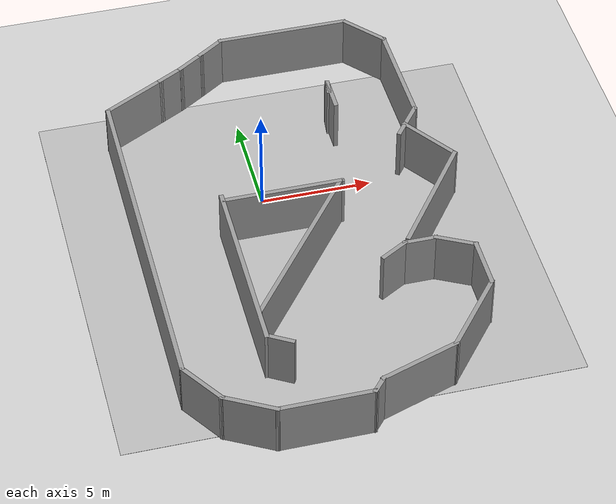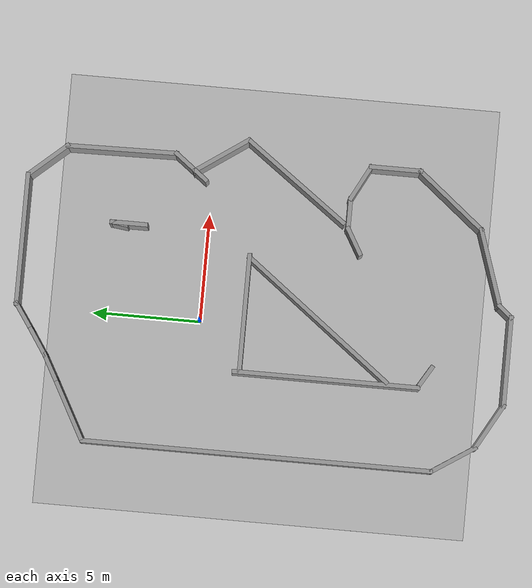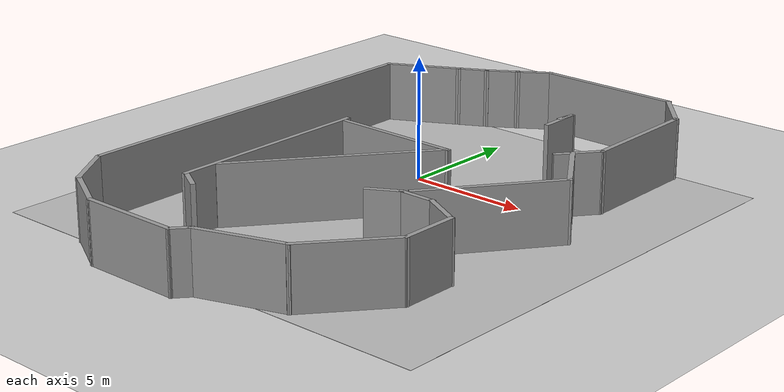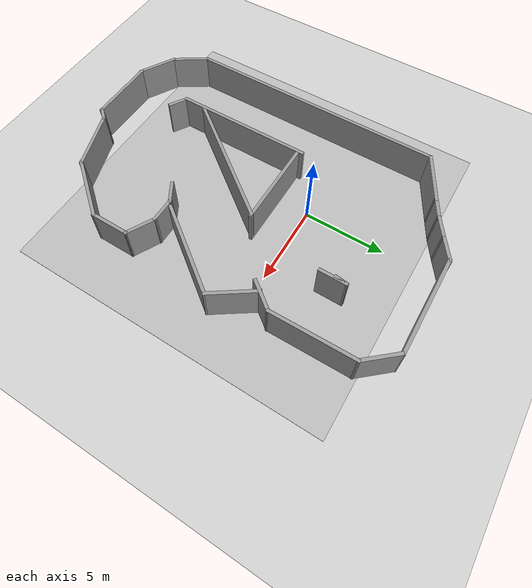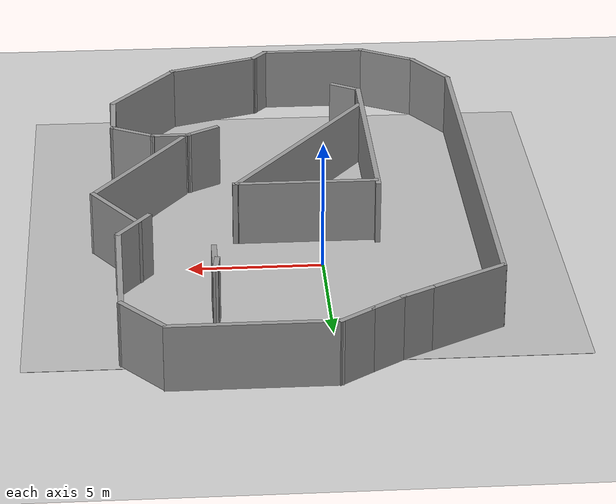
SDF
<sdf version="1.4">
 <world name="default">
  <model name="ground_plane">
   <static>1</static>
   <link name="link">
    <collision name="collision">
     <geometry>
      <plane><normal>0.000000 0.000000 1.000000</normal><size>100.000000 100.000000</size></plane>
     </geometry>
     <surface><friction><ode><mu>100.000000</mu><mu2>50.000000</mu2></ode></friction></surface>
    </collision>
    <visual name="visual">
     <cast_shadows>0</cast_shadows>
     <geometry>
      <plane><normal>0.000000 0.000000 1.000000</normal><size>100.000000 100.000000</size></plane>
     </geometry>
     <material>
      <script><uri>file://media/materials/scripts/gazebo.material</uri><name>Gazebo/Grey</name></script>
     </material>
    </visual>
    <velocity_decay><linear>0.000000</linear><angular>0.000000</angular></velocity_decay>
   </link>
  </model>
  <light name="sun" type="directional">
   <pose>0.000000 0.000000 10.000000 0.000000 0.000000 0.000000</pose>
   <diffuse>0.800000 0.800000 0.800000 1.000000</diffuse>
   <specular>0.100000 0.100000 0.100000 1.000000</specular>
   <attenuation>
    <range>1000.000000</range>
    <constant>0.900000</constant>
    <linear>0.010000</linear>
    <quadratic>0.001000</quadratic>
   </attenuation>
   <direction>-0.500000 0.500000 -1.000000</direction>
  </light>
  <physics type="ode">
   <max_step_size>0.001000</max_step_size>
   <real_time_factor>1.000000</real_time_factor>
   <real_time_update_rate>1000.000000</real_time_update_rate>
   <gravity>0.000000 0.000000 -9.800000</gravity>
   <max_contacts>20</max_contacts>
  </physics>
  <scene>
   <ambient>0.200000 0.200000 0.200000 1.000000</ambient>
   <background>0.700000 0.700000 0.700000 1.000000</background>
   <shadows>1</shadows>
  </scene>
  <model name="CircuitoMontmelo">
   <static>1</static>
   <link name="link">
    <collision name="collision">
     <geometry><box><size>20.000000 20.000000 0.010000</size></box></geometry>
    </collision>
    <visual name="visual">
     <cast_shadows>0</cast_shadows>
     <geometry><box><size>20.000000 20.000000 0.010000</size></box></geometry>
     <material>
      <script>
       <uri>model://circuitoMontmelo/materials/scripts</uri>
       <uri>model://circuitoMontmelo/materials/textures</uri>
       <name>floor</name>
      </script>
     </material>
    </visual>
    <velocity_decay><linear>0.000000</linear><angular>0.000000</angular></velocity_decay>
   </link>
   <pose>1.000000 -3.000000 0.000000 0.000000 0.000000 0.000000</pose>
  </model>
  <model name="ParedesMontmelo">
   <link name="Wall_23">
    <collision name="Wall_23_Collision">
     <geometry><box><size>3.240240 0.200000 2.500000</size></box></geometry>
     <pose>0.000000 0.000000 1.250000 0.000000 0.000000 0.000000</pose>
    </collision>
    <visual name="Wall_23_Visual">
     <pose>0.000000 0.000000 1.250000 0.000000 0.000000 0.000000</pose>
     <geometry><box><size>3.240240 0.200000 2.500000</size></box></geometry>
     <material>
      <script><uri>file://media/materials/scripts/gazebo.material</uri><name>Gazebo/Grey</name></script>
     </material>
    </visual>
    <velocity_decay><linear>0.000000</linear><angular>0.000000</angular></velocity_decay>
    <pose>-4.624190 5.629750 0.000000 0.000000 0.000000 0.495133</pose>
   </link>
   <link name="Wall_24">
    <collision name="Wall_24_Collision">
     <geometry><box><size>1.421220 0.200000 2.500000</size></box></geometry>
     <pose>0.000000 0.000000 1.250000 0.000000 0.000000 0.000000</pose>
    </collision>
    <visual name="Wall_24_Visual">
     <pose>0.000000 0.000000 1.250000 0.000000 0.000000 0.000000</pose>
     <geometry><box><size>1.421220 0.200000 2.500000</size></box></geometry>
     <material>
      <script><uri>file://media/materials/scripts/gazebo.material</uri><name>Gazebo/Grey</name></script>
     </material>
    </visual>
    <velocity_decay><linear>0.000000</linear><angular>0.000000</angular></velocity_decay>
    <pose>-2.751600 6.646300 0.000000 0.000000 0.000000 0.502843</pose>
   </link>
   <link name="Wall_25">
    <collision name="Wall_25_Collision">
     <geometry><box><size>1.525650 0.200000 2.500000</size></box></geometry>
     <pose>0.000000 0.000000 1.250000 0.000000 0.000000 0.000000</pose>
    </collision>
    <visual name="Wall_25_Visual">
     <pose>0.000000 0.000000 1.250000 0.000000 0.000000 0.000000</pose>
     <geometry><box><size>1.525650 0.200000 2.500000</size></box></geometry>
     <material>
      <script><uri>file://media/materials/scripts/gazebo.material</uri><name>Gazebo/Grey</name></script>
     </material>
    </visual>
    <velocity_decay><linear>0.000000</linear><angular>0.000000</angular></velocity_decay>
    <pose>-1.663700 7.306160 0.000000 0.000000 0.000000 0.584242</pose>
   </link>
   <link name="Wall_26">
    <collision name="Wall_26_Collision">
     <geometry><box><size>1.573160 0.200000 2.500000</size></box></geometry>
     <pose>0.000000 0.000000 1.250000 0.000000 0.000000 0.000000</pose>
    </collision>
    <visual name="Wall_26_Visual">
     <pose>0.000000 0.000000 1.250000 0.000000 0.000000 0.000000</pose>
     <geometry><box><size>1.573160 0.200000 2.500000</size></box></geometry>
     <material>
      <script><uri>file://media/materials/scripts/gazebo.material</uri><name>Gazebo/Grey</name></script>
     </material>
    </visual>
    <velocity_decay><linear>0.000000</linear><angular>0.000000</angular></velocity_decay>
    <pose>-0.544373 8.059740 0.000000 0.000000 0.000000 0.600567</pose>
   </link>
   <link name="Wall_27">
    <collision name="Wall_27_Collision">
     <geometry><box><size>6.143590 0.200000 2.500000</size></box></geometry>
     <pose>0.000000 0.000000 1.250000 0.000000 0.000000 0.000000</pose>
    </collision>
    <visual name="Wall_27_Visual">
     <pose>0.000000 0.000000 1.250000 0.000000 0.000000 0.000000</pose>
     <geometry><box><size>6.143590 0.200000 2.500000</size></box></geometry>
     <material>
      <script><uri>file://media/materials/scripts/gazebo.material</uri><name>Gazebo/Grey</name></script>
     </material>
    </visual>
    <velocity_decay><linear>0.000000</linear><angular>0.000000</angular></velocity_decay>
    <pose>2.993860 8.447740 0.000000 0.000000 0.000000 0.000000</pose>
   </link>
   <link name="Wall_29">
    <collision name="Wall_29_Collision">
     <geometry><box><size>2.356640 0.200000 2.500000</size></box></geometry>
     <pose>0.000000 0.000000 1.250000 0.000000 0.000000 0.000000</pose>
    </collision>
    <visual name="Wall_29_Visual">
     <pose>0.000000 0.000000 1.250000 0.000000 0.000000 0.000000</pose>
     <geometry><box><size>2.356640 0.200000 2.500000</size></box></geometry>
     <material>
      <script><uri>file://media/materials/scripts/gazebo.material</uri><name>Gazebo/Grey</name></script>
     </material>
    </visual>
    <velocity_decay><linear>0.000000</linear><angular>0.000000</angular></velocity_decay>
    <pose>6.743990 7.563270 0.000000 0.000000 0.000000 -0.855053</pose>
   </link>
   <link name="Wall_30">
    <collision name="Wall_30_Collision">
     <geometry><box><size>5.213800 0.200000 2.500000</size></box></geometry>
     <pose>0.000000 0.000000 1.250000 0.000000 0.000000 0.000000</pose>
    </collision>
    <visual name="Wall_30_Visual">
     <pose>0.000000 0.000000 1.250000 0.000000 0.000000 0.000000</pose>
     <geometry><box><size>5.213800 0.200000 2.500000</size></box></geometry>
     <material>
      <script><uri>file://media/materials/scripts/gazebo.material</uri><name>Gazebo/Grey</name></script>
     </material>
    </visual>
    <velocity_decay><linear>0.000000</linear><angular>0.000000</angular></velocity_decay>
    <pose>7.492240 4.243000 0.000000 0.000000 0.000000 -1.554570</pose>
   </link>
   <link name="Wall_31">
    <collision name="Wall_31_Collision">
     <geometry><box><size>2.004890 0.200000 2.500000</size></box></geometry>
     <pose>0.000000 0.000000 1.250000 0.000000 0.000000 0.000000</pose>
    </collision>
    <visual name="Wall_31_Visual">
     <pose>0.000000 0.000000 1.250000 0.000000 0.000000 0.000000</pose>
     <geometry><box><size>2.004890 0.200000 2.500000</size></box></geometry>
     <material>
      <script><uri>file://media/materials/scripts/gazebo.material</uri><name>Gazebo/Grey</name></script>
     </material>
    </visual>
    <velocity_decay><linear>0.000000</linear><angular>0.000000</angular></velocity_decay>
    <pose>6.983550 1.020470 0.000000 0.000000 0.000000 -2.225300</pose>
   </link>
   <link name="Wall_33">
    <collision name="Wall_33_Collision">
     <geometry><box><size>2.434360 0.200000 2.500000</size></box></geometry>
     <pose>0.000000 0.000000 1.250000 0.000000 0.000000 0.000000</pose>
    </collision>
    <visual name="Wall_33_Visual">
     <pose>0.000000 0.000000 1.250000 0.000000 0.000000 0.000000</pose>
     <geometry><box><size>2.434360 0.200000 2.500000</size></box></geometry>
     <material>
      <script><uri>file://media/materials/scripts/gazebo.material</uri><name>Gazebo/Grey</name></script>
     </material>
    </visual>
    <velocity_decay><linear>0.000000</linear><angular>0.000000</angular></velocity_decay>
    <pose>-5.347530 -12.147000 0.000000 0.000000 0.000000 -0.992894</pose>
   </link>
   <link name="Wall_34">
    <collision name="Wall_34_Collision">
     <geometry><box><size>2.531520 0.200000 2.500000</size></box></geometry>
     <pose>0.000000 0.000000 1.250000 0.000000 0.000000 0.000000</pose>
    </collision>
    <visual name="Wall_34_Visual">
     <pose>0.000000 0.000000 1.250000 0.000000 0.000000 0.000000</pose>
     <geometry><box><size>2.531520 0.200000 2.500000</size></box></geometry>
     <material>
      <script><uri>file://media/materials/scripts/gazebo.material</uri><name>Gazebo/Grey</name></script>
     </material>
    </visual>
    <velocity_decay><linear>0.000000</linear><angular>0.000000</angular></velocity_decay>
    <pose>-3.720120 -13.652400 0.000000 0.000000 0.000000 -0.510488</pose>
   </link>
   <link name="Wall_35">
    <collision name="Wall_35_Collision">
     <geometry><box><size>4.268530 0.200000 2.500000</size></box></geometry>
     <pose>0.000000 0.000000 1.250000 0.000000 0.000000 0.000000</pose>
    </collision>
    <visual name="Wall_35_Visual">
     <pose>0.000000 0.000000 1.250000 0.000000 0.000000 0.000000</pose>
     <geometry><box><size>4.268530 0.200000 2.500000</size></box></geometry>
     <material>
      <script><uri>file://media/materials/scripts/gazebo.material</uri><name>Gazebo/Grey</name></script>
     </material>
    </visual>
    <velocity_decay><linear>0.000000</linear><angular>0.000000</angular></velocity_decay>
    <pose>-0.668718 -14.222000 0.000000 0.000000 0.000000 0.000000</pose>
   </link>
   <link name="Wall_36">
    <collision name="Wall_36_Collision">
     <geometry><box><size>0.950200 0.200000 2.500000</size></box></geometry>
     <pose>0.000000 0.000000 1.250000 0.000000 0.000000 0.000000</pose>
    </collision>
    <visual name="Wall_36_Visual">
     <pose>0.000000 0.000000 1.250000 0.000000 0.000000 0.000000</pose>
     <geometry><box><size>0.950200 0.200000 2.500000</size></box></geometry>
     <material>
      <script><uri>file://media/materials/scripts/gazebo.material</uri><name>Gazebo/Grey</name></script>
     </material>
    </visual>
    <velocity_decay><linear>0.000000</linear><angular>0.000000</angular></velocity_decay>
    <pose>1.609660 -13.937200 0.000000 0.000000 0.000000 0.862170</pose>
   </link>
   <link name="Wall_37">
    <collision name="Wall_37_Collision">
     <geometry><box><size>3.802430 0.200000 2.500000</size></box></geometry>
     <pose>0.000000 0.000000 1.250000 0.000000 0.000000 0.000000</pose>
    </collision>
    <visual name="Wall_37_Visual">
     <pose>0.000000 0.000000 1.250000 0.000000 0.000000 0.000000</pose>
     <geometry><box><size>3.802430 0.200000 2.500000</size></box></geometry>
     <material>
      <script><uri>file://media/materials/scripts/gazebo.material</uri><name>Gazebo/Grey</name></script>
     </material>
    </visual>
    <velocity_decay><linear>0.000000</linear><angular>0.000000</angular></velocity_decay>
    <pose>3.562550 -13.082800 0.000000 0.000000 0.000000 0.321751</pose>
   </link>
   <link name="Wall_38">
    <collision name="Wall_38_Collision">
     <geometry><box><size>4.076010 0.200000 2.500000</size></box></geometry>
     <pose>0.000000 0.000000 1.250000 0.000000 0.000000 0.000000</pose>
    </collision>
    <visual name="Wall_38_Visual">
     <pose>0.000000 0.000000 1.250000 0.000000 0.000000 0.000000</pose>
     <geometry><box><size>4.076010 0.200000 2.500000</size></box></geometry>
     <material>
      <script><uri>file://media/materials/scripts/gazebo.material</uri><name>Gazebo/Grey</name></script>
     </material>
    </visual>
    <velocity_decay><linear>0.000000</linear><angular>0.000000</angular></velocity_decay>
    <pose>6.491900 -11.007800 0.000000 0.000000 0.000000 0.889498</pose>
   </link>
   <link name="Wall_39">
    <collision name="Wall_39_Collision">
     <geometry><box><size>2.478380 0.200000 2.500000</size></box></geometry>
     <pose>0.000000 0.000000 1.250000 0.000000 0.000000 0.000000</pose>
    </collision>
    <visual name="Wall_39_Visual">
     <pose>0.000000 0.000000 1.250000 0.000000 0.000000 0.000000</pose>
     <geometry><box><size>2.478380 0.200000 2.500000</size></box></geometry>
     <material>
      <script><uri>file://media/materials/scripts/gazebo.material</uri><name>Gazebo/Grey</name></script>
     </material>
    </visual>
    <velocity_decay><linear>0.000000</linear><angular>0.000000</angular></velocity_decay>
    <pose>7.712460 -8.363270 0.000000 0.000000 0.000000 1.570800</pose>
   </link>
   <link name="Wall_40">
    <collision name="Wall_40_Collision">
     <geometry><box><size>1.947100 0.200000 2.500000</size></box></geometry>
     <pose>0.000000 0.000000 1.250000 0.000000 0.000000 0.000000</pose>
    </collision>
    <visual name="Wall_40_Visual">
     <pose>0.000000 0.000000 1.250000 0.000000 0.000000 0.000000</pose>
     <geometry><box><size>1.947100 0.200000 2.500000</size></box></geometry>
     <material>
      <script><uri>file://media/materials/scripts/gazebo.material</uri><name>Gazebo/Grey</name></script>
     </material>
    </visual>
    <velocity_decay><linear>0.000000</linear><angular>0.000000</angular></velocity_decay>
    <pose>6.939430 -6.817220 0.000000 0.000000 0.000000 2.657120</pose>
   </link>
   <link name="Wall_41">
    <collision name="Wall_41_Collision">
     <geometry><box><size>1.583300 0.200000 2.500000</size></box></geometry>
     <pose>0.000000 0.000000 1.250000 0.000000 0.000000 0.000000</pose>
    </collision>
    <visual name="Wall_41_Visual">
     <pose>0.000000 0.000000 1.250000 0.000000 0.000000 0.000000</pose>
     <geometry><box><size>1.583300 0.200000 2.500000</size></box></geometry>
     <material>
      <script><uri>file://media/materials/scripts/gazebo.material</uri><name>Gazebo/Grey</name></script>
     </material>
    </visual>
    <velocity_decay><linear>0.000000</linear><angular>0.000000</angular></velocity_decay>
    <pose>5.474760 -6.410370 0.000000 0.000000 0.000000 3.141590</pose>
   </link>
   <link name="Wall_42">
    <collision name="Wall_42_Collision">
     <geometry><box><size>1.473650 0.200000 2.500000</size></box></geometry>
     <pose>0.000000 0.000000 1.250000 0.000000 0.000000 0.000000</pose>
    </collision>
    <visual name="Wall_42_Visual">
     <pose>0.000000 0.000000 1.250000 0.000000 0.000000 0.000000</pose>
     <geometry><box><size>1.473650 0.200000 2.500000</size></box></geometry>
     <material>
      <script><uri>file://media/materials/scripts/gazebo.material</uri><name>Gazebo/Grey</name></script>
     </material>
    </visual>
    <velocity_decay><linear>0.000000</linear><angular>0.000000</angular></velocity_decay>
    <pose>4.231610 -6.728780 0.000000 0.000000 0.000000 -2.617990</pose>
   </link>
   <link name="Wall_44">
    <collision name="Wall_44_Collision">
     <geometry><box><size>5.961250 0.200000 2.500000</size></box></geometry>
     <pose>0.000000 0.000000 1.250000 0.000000 0.000000 0.000000</pose>
    </collision>
    <visual name="Wall_44_Visual">
     <pose>0.000000 0.000000 1.250000 0.000000 0.000000 0.000000</pose>
     <geometry><box><size>5.961250 0.200000 2.500000</size></box></geometry>
     <material>
      <script><uri>file://media/materials/scripts/gazebo.material</uri><name>Gazebo/Grey</name></script>
     </material>
    </visual>
    <velocity_decay><linear>0.000000</linear><angular>0.000000</angular></velocity_decay>
    <pose>6.736010 -3.847200 0.000000 0.000000 0.000000 0.935770</pose>
   </link>
   <link name="Wall_45">
    <collision name="Wall_45_Collision">
     <geometry><box><size>3.066510 0.200000 2.500000</size></box></geometry>
     <pose>0.000000 0.000000 1.250000 0.000000 0.000000 0.000000</pose>
    </collision>
    <visual name="Wall_45_Visual">
     <pose>0.000000 0.000000 1.250000 0.000000 0.000000 0.000000</pose>
     <geometry><box><size>3.066510 0.200000 2.500000</size></box></geometry>
     <material>
      <script><uri>file://media/materials/scripts/gazebo.material</uri><name>Gazebo/Grey</name></script>
     </material>
    </visual>
    <velocity_decay><linear>0.000000</linear><angular>0.000000</angular></velocity_decay>
    <pose>7.631080 -0.348260 0.000000 0.000000 0.000000 2.174550</pose>
   </link>
   <link name="Wall_47">
    <collision name="Wall_47_Collision">
     <geometry><box><size>8.672580 0.200000 2.500000</size></box></geometry>
     <pose>0.000000 0.000000 1.250000 0.000000 0.000000 0.000000</pose>
    </collision>
    <visual name="Wall_47_Visual">
     <pose>0.000000 0.000000 1.250000 0.000000 0.000000 0.000000</pose>
     <geometry><box><size>8.672580 0.200000 2.500000</size></box></geometry>
     <material>
      <script><uri>file://media/materials/scripts/gazebo.material</uri><name>Gazebo/Grey</name></script>
     </material>
    </visual>
    <velocity_decay><linear>0.000000</linear><angular>0.000000</angular></velocity_decay>
    <pose>-2.214760 -6.006970 0.000000 0.000000 0.000000 1.570800</pose>
   </link>
   <link name="Wall_49">
    <collision name="Wall_49_Collision">
     <geometry><box><size>8.675200 0.200000 2.500000</size></box></geometry>
     <pose>0.000000 0.000000 1.250000 0.000000 0.000000 0.000000</pose>
    </collision>
    <visual name="Wall_49_Visual">
     <pose>0.000000 0.000000 1.250000 0.000000 0.000000 0.000000</pose>
     <geometry><box><size>8.675200 0.200000 2.500000</size></box></geometry>
     <material>
      <script><uri>file://media/materials/scripts/gazebo.material</uri><name>Gazebo/Grey</name></script>
     </material>
    </visual>
    <velocity_decay><linear>0.000000</linear><angular>0.000000</angular></velocity_decay>
    <pose>0.481704 -5.402490 0.000000 0.000000 0.000000 0.916298</pose>
   </link>
   <link name="Wall_51">
    <collision name="Wall_51_Collision">
     <geometry><box><size>5.489090 0.200000 2.500000</size></box></geometry>
     <pose>0.000000 0.000000 1.250000 0.000000 0.000000 0.000000</pose>
    </collision>
    <visual name="Wall_51_Visual">
     <pose>0.000000 0.000000 1.250000 0.000000 0.000000 0.000000</pose>
     <geometry><box><size>5.489090 0.200000 2.500000</size></box></geometry>
     <material>
      <script><uri>file://media/materials/scripts/gazebo.material</uri><name>Gazebo/Grey</name></script>
     </material>
    </visual>
    <velocity_decay><linear>0.000000</linear><angular>0.000000</angular></velocity_decay>
    <pose>0.511156 -2.016360 0.000000 0.000000 0.000000 0.000000</pose>
   </link>
   <link name="Wall_53">
    <collision name="Wall_53_Collision">
     <geometry><box><size>1.148940 0.200000 2.500000</size></box></geometry>
     <pose>0.000000 0.000000 1.250000 0.000000 0.000000 0.000000</pose>
    </collision>
    <visual name="Wall_53_Visual">
     <pose>0.000000 0.000000 1.250000 0.000000 0.000000 0.000000</pose>
     <geometry><box><size>1.148940 0.200000 2.500000</size></box></geometry>
     <material>
      <script><uri>file://media/materials/scripts/gazebo.material</uri><name>Gazebo/Grey</name></script>
     </material>
    </visual>
    <velocity_decay><linear>0.000000</linear><angular>0.000000</angular></velocity_decay>
    <pose>-1.645160 -10.560300 0.000000 0.000000 0.000000 -0.540420</pose>
   </link>
   <link name="Wall_55">
    <collision name="Wall_55_Collision">
     <geometry><box><size>0.858154 0.200000 2.500000</size></box></geometry>
     <pose>0.000000 0.000000 1.250000 0.000000 0.000000 0.000000</pose>
    </collision>
    <visual name="Wall_55_Visual">
     <pose>0.000000 0.000000 1.250000 0.000000 0.000000 0.000000</pose>
     <geometry><box><size>0.858154 0.200000 2.500000</size></box></geometry>
     <material>
      <script><uri>file://media/materials/scripts/gazebo.material</uri><name>Gazebo/Grey</name></script>
     </material>
    </visual>
    <velocity_decay><linear>0.000000</linear><angular>0.000000</angular></velocity_decay>
    <pose>4.091460 4.087510 0.000000 0.000000 0.000000 1.446840</pose>
   </link>
   <link name="Wall_56">
    <collision name="Wall_56_Collision">
     <geometry><box><size>1.748180 0.200000 2.500000</size></box></geometry>
     <pose>0.000000 0.000000 1.250000 0.000000 0.000000 0.000000</pose>
    </collision>
    <visual name="Wall_56_Visual">
     <pose>0.000000 0.000000 1.250000 0.000000 0.000000 0.000000</pose>
     <geometry><box><size>1.748180 0.200000 2.500000</size></box></geometry>
     <material>
      <script><uri>file://media/materials/scripts/gazebo.material</uri><name>Gazebo/Grey</name></script>
     </material>
    </visual>
    <velocity_decay><linear>0.000000</linear><angular>0.000000</angular></velocity_decay>
    <pose>4.132150 3.639970 0.000000 0.000000 0.000000 -1.570800</pose>
   </link>
   <link name="Wall_8">
    <collision name="Wall_8_Collision">
     <geometry><box><size>16.201000 0.200000 2.500000</size></box></geometry>
     <pose>0.000000 0.000000 1.250000 0.000000 0.000000 0.000000</pose>
    </collision>
    <visual name="Wall_8_Visual">
     <pose>0.000000 0.000000 1.250000 0.000000 0.000000 0.000000</pose>
     <geometry><box><size>16.201000 0.200000 2.500000</size></box></geometry>
     <material>
      <script><uri>file://media/materials/scripts/gazebo.material</uri><name>Gazebo/Grey</name></script>
     </material>
    </visual>
    <velocity_decay><linear>0.000000</linear><angular>0.000000</angular></velocity_decay>
    <pose>-5.982460 -3.140350 0.000000 0.000000 0.000000 1.570800</pose>
   </link>
   <static>1</static>
  </model>
 </world>
</sdf>
